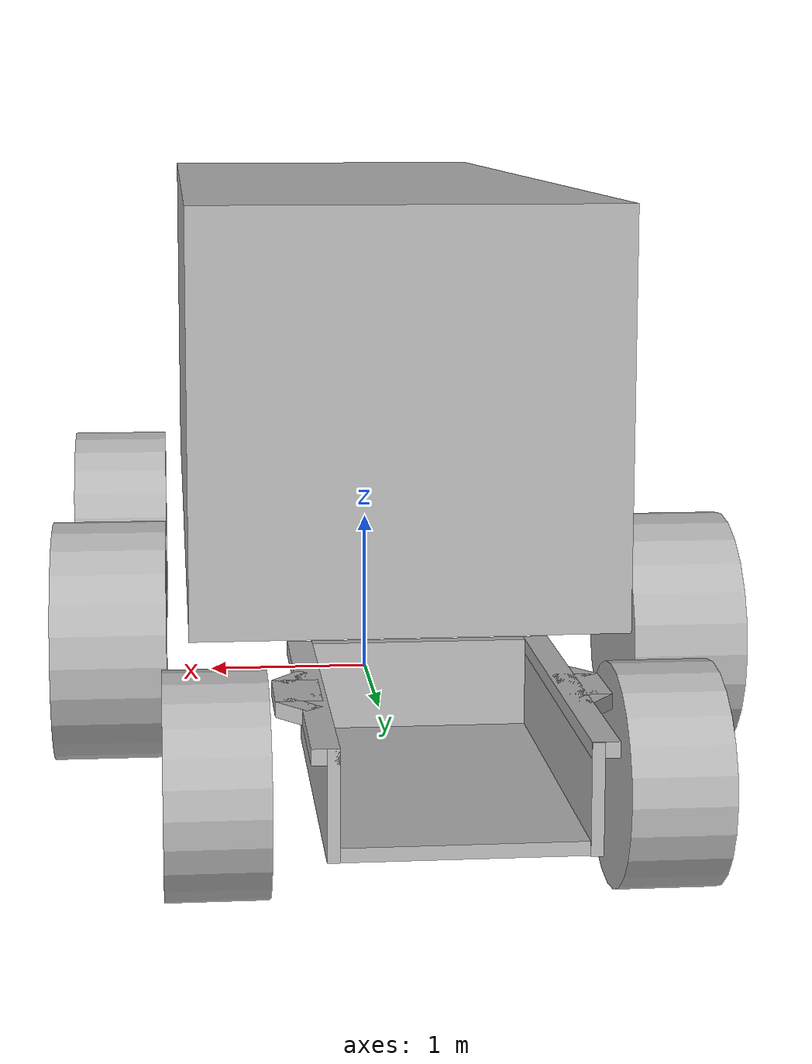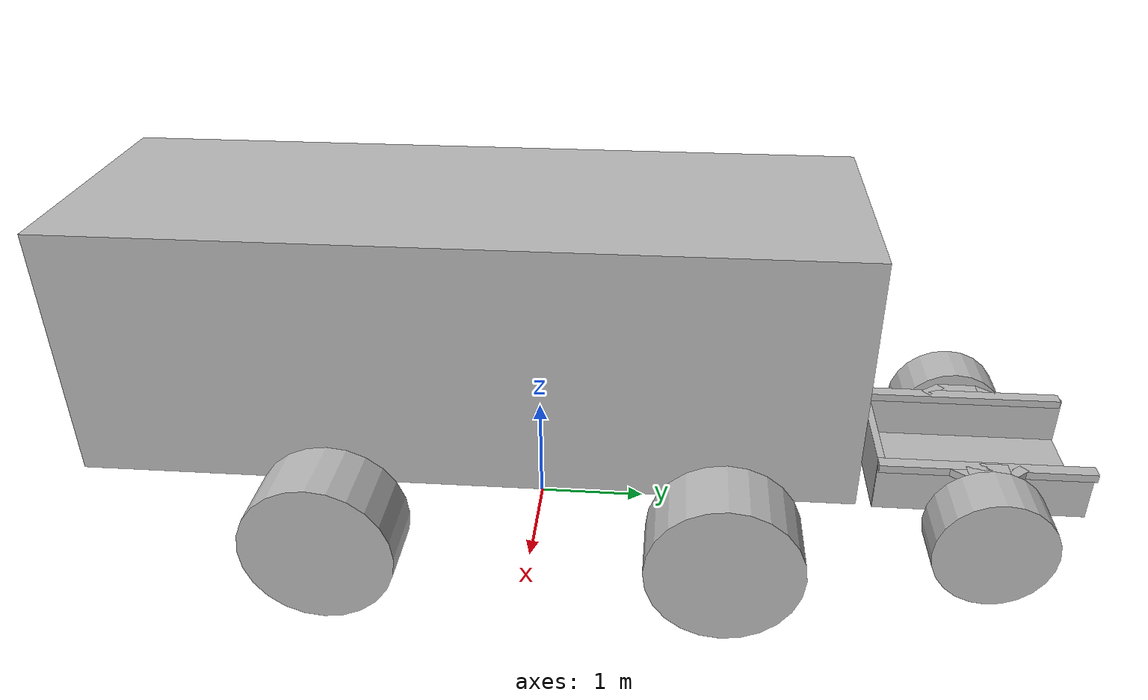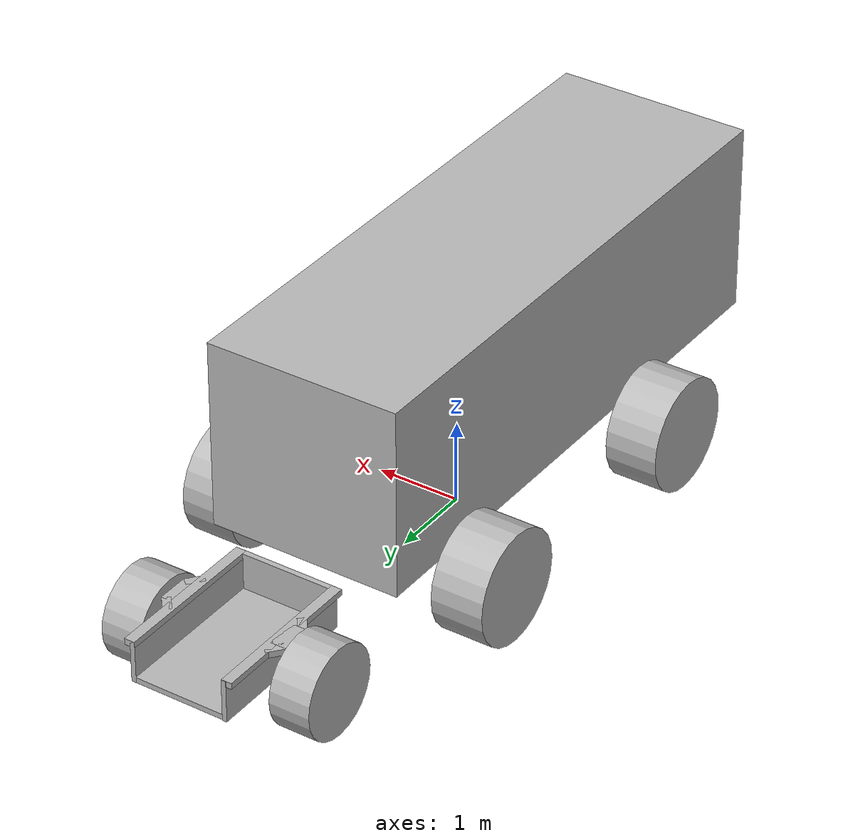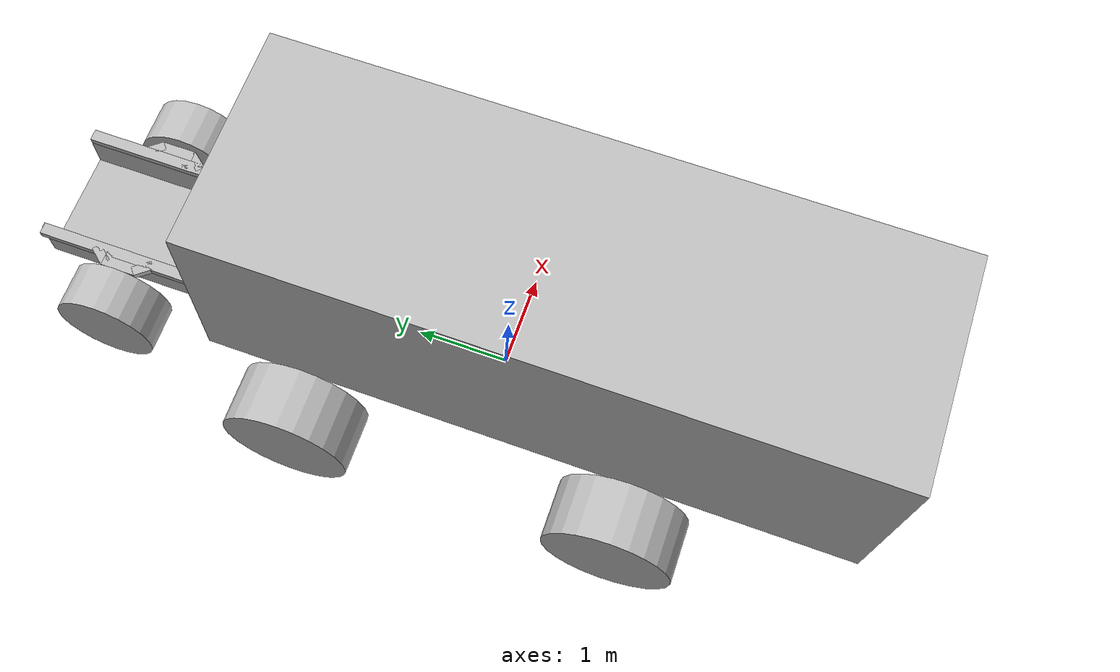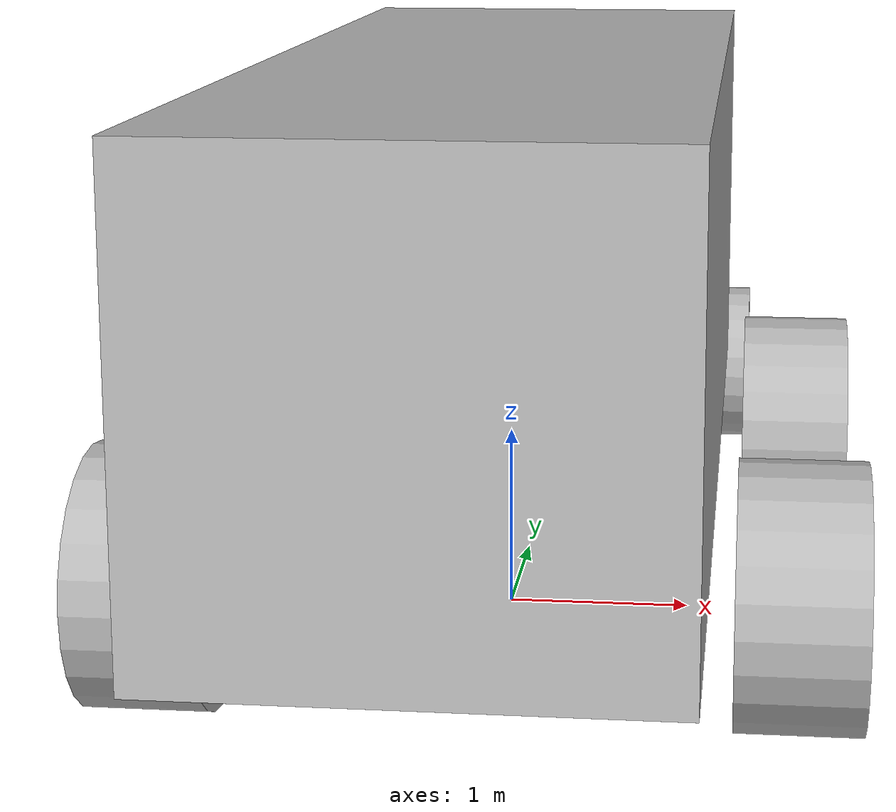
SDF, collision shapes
<?xml version="1.0" ?>
<sdf version="1.6">
  <model name="mars_explorer">
    <static>1</static>
    <link name="link">

      <visual name="visual">
        <geometry>
          <mesh>
            <uri>model://mars_explorer/meshes/mars_explorer.obj</uri>
            <scale>0.0254 0.0254 0.0254</scale>
          </mesh>
        </geometry>
      </visual>

      <collision name="trailer_left">
        <pose>0.5728 4.0715 0.696 0 0 0</pose>
        <geometry>
          <box>
            <size>0.057 1.905 0.51</size>
          </box>
        </geometry>
        <surface>
          <contact>
            <ode>
              <kp>1e5</kp>
              <kd>1</kd>
              <max_vel>0.1</max_vel>
              <min_depth>0.0015</min_depth>
            </ode>
          </contact>
        </surface>
      </collision>

      <collision name="trailer_left_top">
        <pose>0.6065 4.0715 0.9142 0 0 0</pose>
        <geometry>
          <box>
            <size>0.125 1.905 0.074</size>
          </box>
        </geometry>
        <surface>
          <contact>
            <ode>
              <kp>1e5</kp>
              <kd>1</kd>
              <max_vel>0.1</max_vel>
              <min_depth>0.0015</min_depth>
            </ode>
          </contact>
        </surface>
      </collision>

      <collision name="trailer_left_handle">
        <pose>0.67495 4.069 0.9142 0 0 0</pose>
        <geometry>
          <box>
            <size>0.220321 0.375 0.074</size>
          </box>
        </geometry>
        <surface>
          <contact>
            <ode>
              <kp>1e5</kp>
              <kd>1</kd>
              <max_vel>0.1</max_vel>
              <min_depth>0.0015</min_depth>
            </ode>
          </contact>
        </surface>
      </collision>

      <collision name="trailer_left_handle_edge_1">
        <pose>0.6783 3.828 0.9142 0 0 -0.681263</pose>
        <geometry>
          <box>
            <size>0.1 0.2155 0.074</size>
          </box>
        </geometry>
        <surface>
          <contact>
            <ode>
              <kp>1e5</kp>
              <kd>1</kd>
              <max_vel>0.1</max_vel>
              <min_depth>0.0015</min_depth>
            </ode>
          </contact>
        </surface>
      </collision>

      <collision name="trailer_left_handle_edge_2">
        <pose>0.6783 4.309 0.9142 0 0 0.681263</pose>
        <geometry>
          <box>
            <size>0.1 0.2155 0.074</size>
          </box>
        </geometry>
        <surface>
          <contact>
            <ode>
              <kp>1e5</kp>
              <kd>1</kd>
              <max_vel>0.1</max_vel>
              <min_depth>0.0015</min_depth>
            </ode>
          </contact>
        </surface>
      </collision>

      <collision name="trailer_right">
        <pose>-0.5728 4.075 0.696 0 0 0</pose>
        <geometry>
          <box>
            <size>0.057 1.915 0.51</size>
          </box>
        </geometry>
        <surface>
          <contact>
            <ode>
              <kp>1e5</kp>
              <kd>1</kd>
              <max_vel>0.1</max_vel>
              <min_depth>0.0015</min_depth>
            </ode>
          </contact>
        </surface>
      </collision>

      <collision name="trailer_right_top">
        <pose>-0.6065 4.0715 0.9142 0 0 0</pose>
        <geometry>
          <box>
            <size>0.125 1.905 0.074</size>
          </box>
        </geometry>
        <surface>
          <contact>
            <ode>
              <kp>1e5</kp>
              <kd>1</kd>
              <max_vel>0.1</max_vel>
              <min_depth>0.0015</min_depth>
            </ode>
          </contact>
        </surface>
      </collision>

      <collision name="trailer_right_handle">
        <pose>-0.67495 4.069 0.9142 0 0 0</pose>
        <geometry>
          <box>
            <size>0.220321 0.375 0.074</size>
          </box>
        </geometry>
        <surface>
          <contact>
            <ode>
              <kp>1e5</kp>
              <kd>1</kd>
              <max_vel>0.1</max_vel>
              <min_depth>0.0015</min_depth>
            </ode>
          </contact>
        </surface>
      </collision>

      <collision name="trailer_right_handle_edge_1">
        <pose>-0.6783 3.828 0.9142 0 0 0.681263</pose>
        <geometry>
          <box>
            <size>0.1 0.2155 0.074</size>
          </box>
        </geometry>
        <surface>
          <contact>
            <ode>
              <kp>1e5</kp>
              <kd>1</kd>
              <max_vel>0.1</max_vel>
              <min_depth>0.0015</min_depth>
            </ode>
          </contact>
        </surface>
      </collision>

      <collision name="trailer_right_handle_edge_2">
        <pose>-0.6783 4.309 0.9142 0 0 -0.681263</pose>
        <geometry>
          <box>
            <size>0.1 0.2155 0.074</size>
          </box>
        </geometry>
        <surface>
          <contact>
            <ode>
              <kp>1e5</kp>
              <kd>1</kd>
              <max_vel>0.1</max_vel>
              <min_depth>0.0015</min_depth>
            </ode>
          </contact>
        </surface>
      </collision>

      <collision name="trailer_bottom">
        <pose>0 4.0715 0.4755 0 0 0</pose>
        <geometry>
          <box>
            <size>1.16 1.905 0.065</size>
          </box>
        </geometry>
        <surface>
          <contact>
            <ode>
              <kp>1e6</kp>
              <kd>1</kd>
              <max_vel>0.1</max_vel>
              <min_depth>0.0015</min_depth>
            </ode>
          </contact>
        </surface>
      </collision>

      <collision name="trailer_back">
        <pose>0 3.1505 0.696 0 0 0</pose>
        <geometry>
          <box>
            <size>1.160 0.066 0.51</size>
          </box>
        </geometry>
        <surface>
          <contact>
            <ode>
              <kp>1e5</kp>
              <kd>1</kd>
              <max_vel>0.1</max_vel>
              <min_depth>0.0015</min_depth>
            </ode>
          </contact>
        </surface>
      </collision>

      <collision name="wheel_right_back">
        <pose>-1.0586 4.07 0.505 0 -1.5707 0</pose>
        <geometry>
          <cylinder>
            <radius>0.54</radius>
            <length>0.49</length>
          </cylinder>
        </geometry>
        <surface>
          <contact>
            <ode>
              <kp>1e5</kp>
              <kd>1</kd>
              <max_vel>0.1</max_vel>
              <min_depth>0.0015</min_depth>
            </ode>
          </contact>
        </surface>
      </collision>

      <collision name="wheel_left_back">
        <pose>1.0586 4.07 0.505 0 -1.5707 0</pose>
        <geometry>
          <cylinder>
            <radius>0.54</radius>
            <length>0.49</length>
          </cylinder>
        </geometry>
        <surface>
          <contact>
            <ode>
              <kp>1e5</kp>
              <kd>1</kd>
              <max_vel>0.1</max_vel>
              <min_depth>0.0015</min_depth>
            </ode>
          </contact>
        </surface>
      </collision>

      <collision name="wheel_right_center">
        <pose>-1.6 1.735 0.64 0 -1.5707 0</pose>
        <geometry>
          <cylinder>
            <radius>0.67</radius>
            <length>0.63</length>
          </cylinder>
        </geometry>
        <surface>
          <contact>
            <ode>
              <kp>1e5</kp>
              <kd>1</kd>
              <max_vel>0.1</max_vel>
              <min_depth>0.0015</min_depth>
            </ode>
          </contact>
        </surface>
      </collision>

      <collision name="wheel_left_center">
        <pose>1.6 1.735 0.64 0 -1.5707 0</pose>
        <geometry>
          <cylinder>
            <radius>0.67</radius>
            <length>0.63</length>
          </cylinder>
        </geometry>
        <surface>
          <contact>
            <ode>
              <kp>1e5</kp>
              <kd>1</kd>
              <max_vel>0.1</max_vel>
              <min_depth>0.0015</min_depth>
            </ode>
          </contact>
        </surface>
      </collision>

      <collision name="wheel_right_front">
        <pose>-1.6 -1.678 0.64 0 -1.5707 0</pose>
        <geometry>
          <cylinder>
            <radius>0.67</radius>
            <length>0.63</length>
          </cylinder>
        </geometry>
        <surface>
          <contact>
            <ode>
              <kp>1e5</kp>
              <kd>1</kd>
              <max_vel>0.1</max_vel>
              <min_depth>0.0015</min_depth>
            </ode>
          </contact>
        </surface>
      </collision>

      <collision name="wheel_left_front">
        <pose>1.6 -1.678 0.64 0 -1.5707 0</pose>
        <geometry>
          <cylinder>
            <radius>0.67</radius>
            <length>0.63</length>
          </cylinder>
        </geometry>
        <surface>
          <contact>
            <ode>
              <kp>1e5</kp>
              <kd>1</kd>
              <max_vel>0.1</max_vel>
              <min_depth>0.0015</min_depth>
            </ode>
          </contact>
        </surface>
      </collision>

      <collision name="chassis">
        <pose>0 -0.562963 2.020171 0 0 0</pose>
        <geometry>
          <box>
            <size>2.332756 6.825834 2.262449</size>
          </box>
        </geometry>
        <surface>
          <contact>
            <ode>
              <kp>1e5</kp>
              <kd>1</kd>
              <max_vel>0.1</max_vel>
              <min_depth>0.0015</min_depth>
            </ode>
          </contact>
        </surface>
      </collision>

    </link>
  </model>
</sdf>
